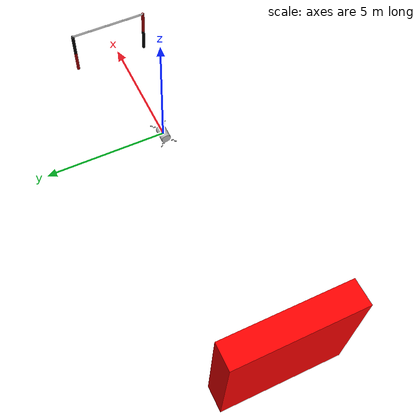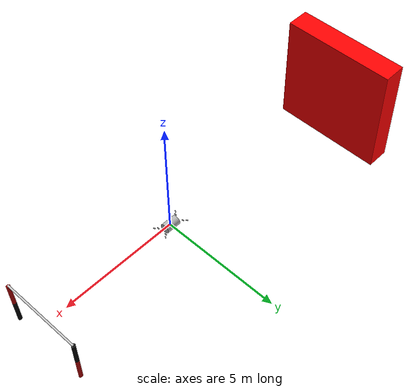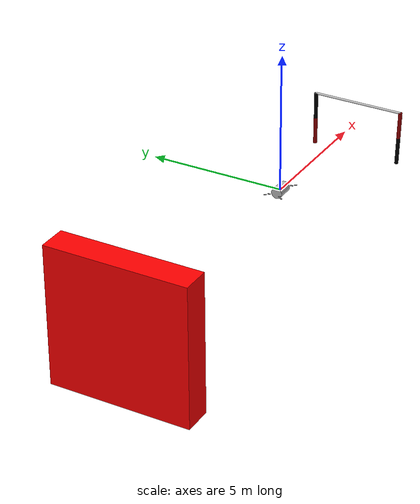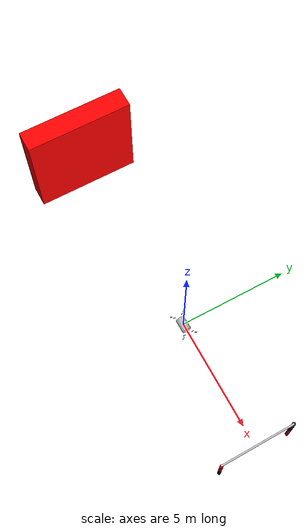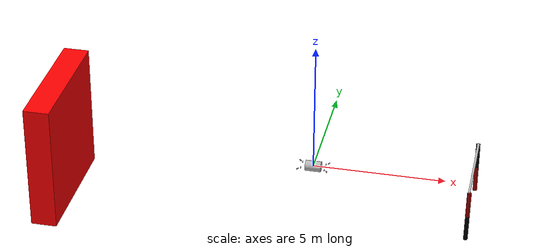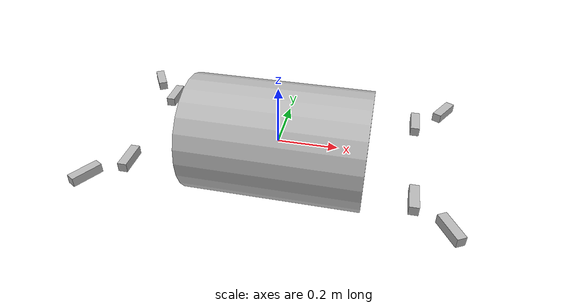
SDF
<sdf version="1.6">
 <world name="water">
  <scene><ambient>0.0 1.0 1.0</ambient><background>0.1 0.5 0.8</background></scene>
  <physics name="1ms" type="ode">
   <max_step_size>0.001</max_step_size>
   <real_time_factor>1.0</real_time_factor>
  </physics>
  <plugin filename="ignition-gazebo-physics-system" name="ignition::gazebo::systems::Physics"/>
  <plugin filename="ignition-gazebo-user-commands-system" name="ignition::gazebo::systems::UserCommands"/>
  <plugin filename="ignition-gazebo-scene-broadcaster-system" name="ignition::gazebo::systems::SceneBroadcaster"/>
  <plugin filename="ignition-gazebo-buoyancy-system" name="ignition::gazebo::systems::Buoyancy">
   <uniform_fluid_density>1000</uniform_fluid_density>
  </plugin>
  <plugin filename="ignition-gazebo-sensors-system" name="gz::sim::systems::Sensors">
   <render_engine>ogre2</render_engine>
  </plugin>
  <plugin filename="gz-sim-imu-system" name="gz::sim::systems::Imu"/>
  <light type="directional" name="sun">
   <pose>0 0 10 0 0 0</pose>
   <diffuse>1 1 1 1</diffuse>
   <specular>0.5 0.5 0.5 1</specular>
   <attenuation>
    <range>1000</range>
    <constant>0.9</constant>
    <linear>0.01</linear>
    <quadratic>0.001</quadratic>
   </attenuation>
   <direction>0.2 0.1 -0.9</direction>
  </light>
  <model name="wall">
   <static>true</static>
   <pose>-10 0 0 0 0 1.5708</pose>
   <link name="wall_link">
    <inertial>
     <inertia><ixx>1</ixx><ixy>0</ixy><ixz>0</ixz><iyy>1</iyy><iyz>0</iyz><izz>1</izz></inertia>
     <mass>1.0</mass>
    </inertial>
    <collision name="wall_collision"><geometry><box><size>1 1 1</size></box></geometry></collision>
    <visual name="wall_visual">
     <geometry><box><size>5 1 5</size></box></geometry>
     <material><ambient>1 0 0 1</ambient><diffuse>1 0 0 1</diffuse><specular>1 0 0 1</specular></material>
    </visual>
   </link>
  </model>
  <include>
   <pose>6 0 -1 0 0 0</pose>
   <uri>/home/eryk/Desktop/Cascade-AUV/simulation/models/gate.sdf</uri>
  </include>
  <include>
   <plugin filename="ignition-gazebo-pose-publisher-system" name="gz::sim::systems::PosePublisher">
    <publish_link_pose>false</publish_link_pose>
    <publish_collision_pose>false</publish_collision_pose>
    <publish_visual_pose>false</publish_visual_pose>
    <publish_model_pose>true</publish_model_pose>
    <publish_nested_model_pose>true</publish_nested_model_pose>
   </plugin>
   <uri>/home/eryk/Desktop/Cascade-AUV/simulation/models/cascade.sdf</uri>
   <plugin filename="ignition-gazebo-thruster-system" name="ignition::gazebo::systems::Thruster">
    <namespace>cascade</namespace>
    <joint_name>propeller_bro_joint</joint_name>
    <topic>motor_throttle/bro</topic>
    <thrust_coefficient>1.0</thrust_coefficient>
    <fluid_density>1000</fluid_density>
    <propeller_diameter>0.05</propeller_diameter>
    <velocity_control>true</velocity_control>
   </plugin>
   <plugin filename="ignition-gazebo-thruster-system" name="ignition::gazebo::systems::Thruster">
    <namespace>cascade</namespace>
    <joint_name>propeller_blo_joint</joint_name>
    <topic>motor_throttle/blo</topic>
    <thrust_coefficient>1.0</thrust_coefficient>
    <fluid_density>1000</fluid_density>
    <propeller_diameter>0.05</propeller_diameter>
    <velocity_control>true</velocity_control>
   </plugin>
   <plugin filename="ignition-gazebo-thruster-system" name="ignition::gazebo::systems::Thruster">
    <namespace>cascade</namespace>
    <joint_name>propeller_fro_joint</joint_name>
    <topic>motor_throttle/fro</topic>
    <thrust_coefficient>1.0</thrust_coefficient>
    <fluid_density>1000</fluid_density>
    <propeller_diameter>0.05</propeller_diameter>
    <velocity_control>true</velocity_control>
   </plugin>
   <plugin filename="ignition-gazebo-thruster-system" name="ignition::gazebo::systems::Thruster">
    <namespace>cascade</namespace>
    <joint_name>propeller_flo_joint</joint_name>
    <topic>motor_throttle/flo</topic>
    <thrust_coefficient>1.0</thrust_coefficient>
    <fluid_density>1000</fluid_density>
    <propeller_diameter>0.05</propeller_diameter>
    <velocity_control>true</velocity_control>
   </plugin>
   <plugin filename="ignition-gazebo-thruster-system" name="ignition::gazebo::systems::Thruster">
    <namespace>cascade</namespace>
    <joint_name>propeller_bri_joint</joint_name>
    <topic>motor_throttle/bri</topic>
    <thrust_coefficient>1.0</thrust_coefficient>
    <fluid_density>1000</fluid_density>
    <propeller_diameter>0.05</propeller_diameter>
    <velocity_control>true</velocity_control>
   </plugin>
   <plugin filename="ignition-gazebo-thruster-system" name="ignition::gazebo::systems::Thruster">
    <namespace>cascade</namespace>
    <joint_name>propeller_bli_joint</joint_name>
    <topic>motor_throttle/bli</topic>
    <thrust_coefficient>1.0</thrust_coefficient>
    <fluid_density>1000</fluid_density>
    <propeller_diameter>0.05</propeller_diameter>
    <velocity_control>true</velocity_control>
   </plugin>
   <plugin filename="ignition-gazebo-thruster-system" name="ignition::gazebo::systems::Thruster">
    <namespace>cascade</namespace>
    <joint_name>propeller_fri_joint</joint_name>
    <topic>motor_throttle/fri</topic>
    <thrust_coefficient>1.0</thrust_coefficient>
    <fluid_density>1000</fluid_density>
    <propeller_diameter>0.05</propeller_diameter>
    <velocity_control>true</velocity_control>
   </plugin>
   <plugin filename="ignition-gazebo-thruster-system" name="ignition::gazebo::systems::Thruster">
    <namespace>cascade</namespace>
    <joint_name>propeller_fli_joint</joint_name>
    <topic>motor_throttle/fli</topic>
    <thrust_coefficient>1.0</thrust_coefficient>
    <fluid_density>1000</fluid_density>
    <propeller_diameter>0.05</propeller_diameter>
    <velocity_control>true</velocity_control>
   </plugin>
   <plugin filename="ignition-gazebo-hydrodynamics-system" name="ignition::gazebo::systems::Hydrodynamics">
    <link_name>base_link</link_name>
    <xDotU>-4.876161</xDotU>
    <yDotV>-126.324739</yDotV>
    <zDotW>-126.324739</zDotW>
    <kDotP>0</kDotP>
    <mDotQ>-33.46</mDotQ>
    <nDotR>-33.46</nDotR>
    <xUabsU>-6.2282</xUabsU>
    <xU>0</xU>
    <yVabsV>-601.27</yVabsV>
    <yV>0</yV>
    <zWabsW>-601.27</zWabsW>
    <zW>0</zW>
    <kPabsP>-0.1916</kPabsP>
    <kP>0</kP>
    <mQabsQ>-632.698957</mQabsQ>
    <mQ>0</mQ>
    <nRabsR>-632.698957</nRabsR>
    <nR>0</nR>
   </plugin>
  </include>
 </world>
</sdf>

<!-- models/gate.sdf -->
<sdf version="1.6">
   <model name="gate">
      <static>true</static>
      <link name="base_link">
        <visual name="gate">
            <geometry>
               <mesh>
                  <uri>/home/eryk/Desktop/Cascade/simulation/models/gate.dae</uri>
               </mesh>
            </geometry>
        </visual>
      </link>
   </model>
    </sdf>

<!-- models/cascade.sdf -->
<sdf version="1.6">
  <model name="cascade">
        <!-- Body -->
    <link name="base_link">
      <inertial>
        <mass>147.8671</mass>
        <inertia>
          <ixx>3.000000</ixx>
          <ixy>0</ixy>
          <ixz>0</ixz>
          <iyy>41.980233</iyy>
          <iyz>0</iyz>
          <izz>41.980233</izz>
        </inertia>
      </inertial>

      <collision name="main_body_buoyancy">
        <geometry>
          <box>
            <size>2 0.3 0.246445166667</size>
          </box>
        </geometry>
      </collision>

      <visual name="visual">
        <geometry>
        <cylinder>
            <radius>0.2</radius>
            <length>0.6</length>
          </cylinder>
        </geometry>
        <pose>0 0 0 0 1.5708 0</pose>
      </visual>

    </link>
    <link name="camera_link">
        <pose>0.35 0 0 0 0 0</pose>
        <inertial>
        <mass>0</mass>
      </inertial>
        <sensor name="depth_camera" type="depth_camera">
          <update_rate>30</update_rate>
          <topic>/sensors/camera/depth_map</topic>
          <camera>
            <image>
              <width>320</width>
              <height>240</height>
              <format>R_FLOAT32</format>
            </image>
            <clip>
              <near>0.1</near>
              <far>100.0</far>
            </clip>
          </camera>
          </sensor>
        <sensor name="camera" type="camera">
          <camera>
            <image>
              <width>320</width>
              <height>240</height>
            </image>
            <clip>
              <near>0.1</near>
              <far>100</far>
            </clip>
          </camera>
          <always_on>1</always_on>
          <update_rate>30</update_rate>
          <visualize>true</visualize>
          <topic>/sensors/camera/rgb</topic>
        </sensor>

        <sensor name="imu_sensor" type="imu">
            <update_rate>1000</update_rate>
            <topic>/sensors/imu</topic>
            <imu>
                <angular_velocity>
                    <x>true</x>
                    <y>true</y>
                    <z>true</z>
                </angular_velocity>
                <linear_acceleration>
                    <x>true</x>
                    <y>true</y>
                    <z>true</z>
                </linear_acceleration>
                <frame>camera_link</frame>
            </imu>
        </sensor>
    </link>

    <joint name="camera_joint" type="fixed">
      <pose>0 0 0 0 0 0</pose>
      <parent>base_link</parent>
      <child>camera_link</child>
  </joint>

    <!-- Propeller -->
    <link name="propeller_fro">
      <pose>0.55 -0.3 0 0 0 0.52359</pose>
      <inertial>
        <pose>0 0 0 0 0 0</pose>
        <mass>0.09</mass>
        <inertia>
          <ixx>0.000143971303</ixx>
          <ixy>0.000000000008</ixy>
          <ixz>-0.000000000224</ixz>
          <iyy>0.000140915448</iyy>
          <iyz>-0.000025236433</iyz>
          <izz>0.000033571862</izz>
        </inertia>
      </inertial>

      <collision name="collision">
        <geometry>
          <box>
            <size>0.03 0.1 0.03</size>
          </box>
        </geometry>
      </collision>

      <visual name= "visual">
        <pose>0 0 0 0 0 0</pose>
        <geometry>
          <box>
              <size>0.03 0.1 0.03 </size>
          </box>
        </geometry>
      </visual>

    </link>

    <joint name="propeller_fro_joint" type="revolute">
      <pose>0 0 0 0 0 0</pose>
      <parent>base_link</parent>
      <child>propeller_fro</child>
      <axis>
        <xyz>1 0 0</xyz>
        <limit>
          <lower>-1e+12</lower>
          <upper>1e+12</upper>
          <effort>-1</effort>
          <velocity>-1</velocity>
        </limit>
      </axis>
    </joint>

<link name="propeller_flo">
      <pose>0.55 0.3 0 0 0 -0.52359</pose>
      <inertial>
        <pose>0 0 0 0 0 0</pose>
        <mass>0.09</mass>
        <inertia>
          <ixx>0.000143971303</ixx>
          <ixy>0.000000000008</ixy>
          <ixz>-0.000000000224</ixz>
          <iyy>0.000140915448</iyy>
          <iyz>-0.000025236433</iyz>
          <izz>0.000033571862</izz>
        </inertia>
      </inertial>

      <collision name="collision">
        <geometry>
          <box>
            <size>0.03 0.1 0.03</size>
          </box>
        </geometry>
      </collision>

      <visual name= "visual">
        <pose>0 0 0 0 0 0</pose>
        <geometry>
          <box>
              <size>0.03 0.1 0.03 </size>
          </box>
        </geometry>
      </visual>

    </link>

    <joint name="propeller_flo_joint" type="revolute">
      <pose>0 0 0 0 0 0</pose>
      <parent>base_link</parent>
      <child>propeller_flo</child>
      <axis>
        <xyz>1 0 0</xyz>
        <limit>
          <lower>-1e+12</lower>
          <upper>1e+12</upper>
          <effort>-1</effort>
          <velocity>-1</velocity>
        </limit>
      </axis>
    </joint>

<link name="propeller_bro">
      <pose>-0.55 -0.3 0 0 0 2.618</pose>
      <inertial>
        <pose>0 0 0 0 0 0</pose>
        <mass>0.09</mass>
        <inertia>
          <ixx>0.000143971303</ixx>
          <ixy>0.000000000008</ixy>
          <ixz>-0.000000000224</ixz>
          <iyy>0.000140915448</iyy>
          <iyz>-0.000025236433</iyz>
          <izz>0.000033571862</izz>
        </inertia>
      </inertial>

      <collision name="collision">
        <geometry>
          <box>
            <size>0.03 0.1 0.03</size>
          </box>
        </geometry>
      </collision>

      <visual name= "visual">
        <pose>0 0 0 0 0 0</pose>
        <geometry>
          <box>
              <size>0.03 0.1 0.03 </size>
          </box>
        </geometry>
      </visual>

    </link>

    <joint name="propeller_bro_joint" type="revolute">
      <pose>0 0 0 0 0 0</pose>
      <parent>base_link</parent>
      <child>propeller_bro</child>
      <axis>
        <xyz>1 0 0</xyz>
        <limit>
          <lower>-1e+12</lower>
          <upper>1e+12</upper>
          <effort>-1</effort>
          <velocity>-1</velocity>
        </limit>
      </axis>
    </joint>

<link name="propeller_blo">
      <pose>-0.55 0.3 0 0 0 3.66519</pose>
      <inertial>
        <pose>0 0 0 0 0 0</pose>
        <mass>0.09</mass>
        <inertia>
          <ixx>0.000143971303</ixx>
          <ixy>0.000000000008</ixy>
          <ixz>-0.000000000224</ixz>
          <iyy>0.000140915448</iyy>
          <iyz>-0.000025236433</iyz>
          <izz>0.000033571862</izz>
        </inertia>
      </inertial>

      <collision name="collision">
        <geometry>
          <box>
            <size>0.03 0.1 0.03</size>
          </box>
        </geometry>
      </collision>

      <visual name= "visual">
        <pose>0 0 0 0 0 0</pose>
        <geometry>
          <box>
              <size>0.03 0.1 0.03 </size>
          </box>
        </geometry>
      </visual>

    </link>

    <joint name="propeller_blo_joint" type="revolute">
      <pose>0 0 0 0 0 0</pose>
      <parent>base_link</parent>
      <child>propeller_blo</child>
      <axis>
        <xyz>1 0 0</xyz>
        <limit>
          <lower>-1e+12</lower>
          <upper>1e+12</upper>
          <effort>-1</effort>
          <velocity>-1</velocity>
        </limit>
      </axis>
    </joint>

<link name="propeller_fri">
      <pose>0.45 -0.2 0 0 0 0</pose>
      <inertial>
        <pose>0 0 0 0 0 0</pose>
        <mass>0.09</mass>
        <inertia>
          <ixx>0.000143971303</ixx>
          <ixy>0.000000000008</ixy>
          <ixz>-0.000000000224</ixz>
          <iyy>0.000140915448</iyy>
          <iyz>-0.000025236433</iyz>
          <izz>0.000033571862</izz>
        </inertia>
      </inertial>

      <collision name="collision">
        <geometry>
          <box>
            <size>0.03 0.1 0.03</size>
          </box>
        </geometry>
      </collision>

      <visual name= "visual">
        <pose>0 0 0 0 0 0</pose>
        <geometry>
          <box>
              <size>0.03 0.1 0.03 </size>
          </box>
        </geometry>
      </visual>

    </link>

    <joint name="propeller_fri_joint" type="revolute">
      <pose>0 0 0 0 0 0</pose>
      <parent>base_link</parent>
      <child>propeller_fri</child>
      <axis>
        <xyz>0 0 1</xyz>
        <limit>
          <lower>-1e+12</lower>
          <upper>1e+12</upper>
          <effort>-1</effort>
          <velocity>-1</velocity>
        </limit>
      </axis>
    </joint>

<link name="propeller_fli">
      <pose>0.45 0.2 0 0 0 0</pose>
      <inertial>
        <pose>0 0 0 0 0 0</pose>
        <mass>0.09</mass>
        <inertia>
          <ixx>0.000143971303</ixx>
          <ixy>0.000000000008</ixy>
          <ixz>-0.000000000224</ixz>
          <iyy>0.000140915448</iyy>
          <iyz>-0.000025236433</iyz>
          <izz>0.000033571862</izz>
        </inertia>
      </inertial>

      <collision name="collision">
        <geometry>
          <box>
            <size>0.03 0.1 0.03</size>
          </box>
        </geometry>
      </collision>

      <visual name= "visual">
        <pose>0 0 0 0 0 0</pose>
        <geometry>
          <box>
              <size>0.03 0.1 0.03 </size>
          </box>
        </geometry>
      </visual>

    </link>

    <joint name="propeller_fli_joint" type="revolute">
      <pose>0 0 0 0 0 0</pose>
      <parent>base_link</parent>
      <child>propeller_fli</child>
      <axis>
        <xyz>0 0 1</xyz>
        <limit>
          <lower>-1e+12</lower>
          <upper>1e+12</upper>
          <effort>-1</effort>
          <velocity>-1</velocity>
        </limit>
      </axis>
    </joint>

<link name="propeller_bri">
      <pose>-0.45 -0.2 0 0 0 0</pose>
      <inertial>
        <pose>0 0 0 0 0 0</pose>
        <mass>0.09</mass>
        <inertia>
          <ixx>0.000143971303</ixx>
          <ixy>0.000000000008</ixy>
          <ixz>-0.000000000224</ixz>
          <iyy>0.000140915448</iyy>
          <iyz>-0.000025236433</iyz>
          <izz>0.000033571862</izz>
        </inertia>
      </inertial>

      <collision name="collision">
        <geometry>
          <box>
            <size>0.03 0.1 0.03</size>
          </box>
        </geometry>
      </collision>

      <visual name= "visual">
        <pose>0 0 0 0 0 0</pose>
        <geometry>
          <box>
              <size>0.03 0.1 0.03 </size>
          </box>
        </geometry>
      </visual>

    </link>

    <joint name="propeller_bri_joint" type="revolute">
      <pose>0 0 0 0 0 0</pose>
      <parent>base_link</parent>
      <child>propeller_bri</child>
      <axis>
        <xyz>0 0 1</xyz>
        <limit>
          <lower>-1e+12</lower>
          <upper>1e+12</upper>
          <effort>-1</effort>
          <velocity>-1</velocity>
        </limit>
      </axis>
    </joint>

<link name="propeller_bli">
      <pose>-0.45 0.2 0 0 0 0</pose>
      <inertial>
        <pose>0 0 0 0 0 0</pose>
        <mass>0.09</mass>
        <inertia>
          <ixx>0.000143971303</ixx>
          <ixy>0.000000000008</ixy>
          <ixz>-0.000000000224</ixz>
          <iyy>0.000140915448</iyy>
          <iyz>-0.000025236433</iyz>
          <izz>0.000033571862</izz>
        </inertia>
      </inertial>

      <collision name="collision">
        <geometry>
          <box>
            <size>0.03 0.1 0.03</size>
          </box>
        </geometry>
      </collision>

      <visual name= "visual">
        <pose>0 0 0 0 0 0</pose>
        <geometry>
          <box>
              <size>0.03 0.1 0.03 </size>
          </box>
        </geometry>
      </visual>

    </link>

    <joint name="propeller_bli_joint" type="revolute">
      <pose>0 0 0 0 0 0</pose>
      <parent>base_link</parent>
      <child>propeller_bli</child>
      <axis>
        <xyz>0 0 1</xyz>
        <limit>
          <lower>-1e+12</lower>
          <upper>1e+12</upper>
          <effort>-1</effort>
          <velocity>-1</velocity>
        </limit>
      </axis>
    </joint>
  </model>
</sdf>
